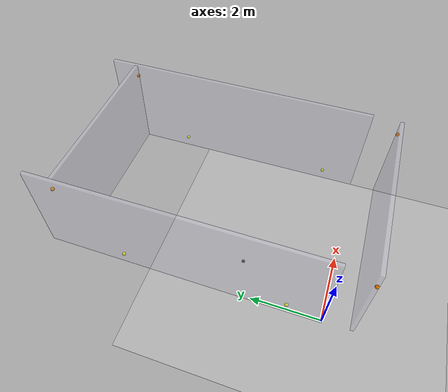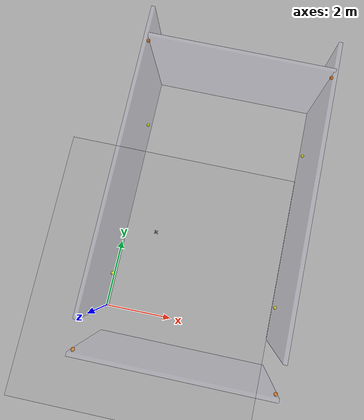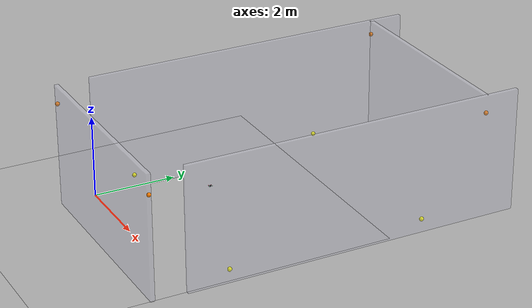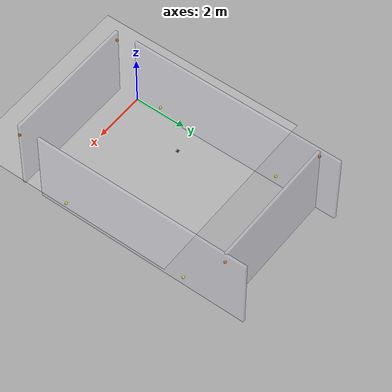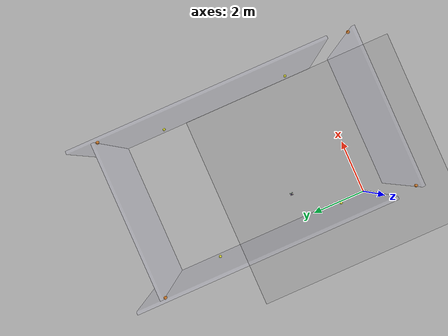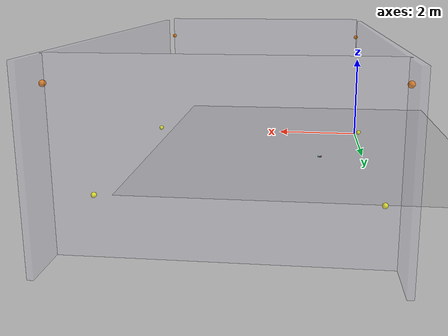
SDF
<?xml version="1.0" ?>
<sdf version="1.9">
  <world name="cf_lab">

    <!-- Physics -->
    <physics name="1ms" type="ignored">
      <max_step_size>0.001</max_step_size>
      <real_time_factor>1.0</real_time_factor>
    </physics>

    <!-- Required plugins -->
    <plugin filename="ignition-gazebo-physics-system"
            name="ignition::gazebo::systems::Physics"/>
    <plugin filename="ignition-gazebo-user-commands-system"
            name="ignition::gazebo::systems::UserCommands"/>
    <plugin filename="ignition-gazebo-scene-broadcaster-system"
            name="ignition::gazebo::systems::SceneBroadcaster"/>
    <plugin filename="ignition-gazebo-sensors-system"
            name="ignition::gazebo::systems::Sensors">
      <render_engine>ogre2</render_engine>
    </plugin>

    <!-- Sun light -->
    <light name="sun" type="directional">
      <cast_shadows>true</cast_shadows>
      <pose>0 0 10 0 0 0</pose>
      <diffuse>1 1 1 1</diffuse>
      <specular>0.5 0.5 0.5 1</specular>
      <direction>-0.5 0.1 -0.9</direction>
    </light>

    <!-- Floor — matches lab dimensions (5.04m x 8.2m) -->
    <model name="floor">
      <static>true</static>
      <link name="floor_link">
        <collision name="floor_collision">
          <geometry>
            <plane><normal>0 0 1</normal><size>10 10</size></plane>
          </geometry>
        </collision>
        <visual name="floor_visual">
          <geometry>
            <plane><normal>0 0 1</normal><size>10 10</size></plane>
          </geometry>
          <material>
            <ambient>0.5 0.5 0.5 1</ambient>
            <diffuse>0.7 0.7 0.7 1</diffuse>
          </material>
        </visual>
      </link>
    </model>

    <!-- Lab boundary walls (5.04m x 8.2m x 3m) -->
    <!-- Wall 1 — X=0 side -->
    <model name="wall_x0">
      <static>true</static>
      <pose>0 4.1 1.5 0 0 0</pose>
      <link name="link">
        <collision name="col"><geometry><box><size>0.1 8.2 3.0</size></box></geometry></collision>
        <visual name="vis">
          <geometry><box><size>0.1 8.2 3.0</size></box></geometry>
          <material><ambient>0.8 0.8 0.9 0.3</ambient><diffuse>0.8 0.8 0.9 0.3</diffuse></material>
        </visual>
      </link>
    </model>

    <!-- Wall 2 — X=5.04 side -->
    <model name="wall_x5">
      <static>true</static>
      <pose>5.04 4.1 1.5 0 0 0</pose>
      <link name="link">
        <collision name="col"><geometry><box><size>0.1 8.2 3.0</size></box></geometry></collision>
        <visual name="vis">
          <geometry><box><size>0.1 8.2 3.0</size></box></geometry>
          <material><ambient>0.8 0.8 0.9 0.3</ambient><diffuse>0.8 0.8 0.9 0.3</diffuse></material>
        </visual>
      </link>
    </model>

    <!-- Wall 3 — Y=-0.8 side -->
    <model name="wall_yn08">
      <static>true</static>
      <pose>2.52 -0.8 1.5 0 0 0</pose>
      <link name="link">
        <collision name="col"><geometry><box><size>5.04 0.1 3.0</size></box></geometry></collision>
        <visual name="vis">
          <geometry><box><size>5.04 0.1 3.0</size></box></geometry>
          <material><ambient>0.8 0.8 0.9 0.3</ambient><diffuse>0.8 0.8 0.9 0.3</diffuse></material>
        </visual>
      </link>
    </model>

    <!-- Wall 4 — Y=7.4 side -->
    <model name="wall_y74">
      <static>true</static>
      <pose>2.52 7.4 1.5 0 0 0</pose>
      <link name="link">
        <collision name="col"><geometry><box><size>5.04 0.1 3.0</size></box></geometry></collision>
        <visual name="vis">
          <geometry><box><size>5.04 0.1 3.0</size></box></geometry>
          <material><ambient>0.8 0.8 0.9 0.3</ambient><diffuse>0.8 0.8 0.9 0.3</diffuse></material>
        </visual>
      </link>
    </model>

    <!-- LPS Anchors (visual markers only) -->
    <!-- Anchor 0: (0, 0, 0.30) low -->
    <model name="anchor_0"><static>true</static><pose>0.0 1.0 0.3 0 0 0</pose>
      <link name="link"><visual name="vis"><geometry><sphere><radius>0.05</radius></sphere></geometry>
      <material><ambient>1 1 0 1</ambient><diffuse>1 1 0 1</diffuse></material></visual></link></model>

    <!-- Anchor 1: (0, 7.4, 2.34) high -->
    <model name="anchor_1"><static>true</static><pose>0.0 7.4 2.64 0 0 0</pose>
      <link name="link"><visual name="vis"><geometry><sphere><radius>0.05</radius></sphere></geometry>
      <material><ambient>1 0.5 0 1</ambient><diffuse>1 0.5 0 1</diffuse></material></visual></link></model>

    <!-- Anchor 2: (5.04, 6.8, 0.30) low -->
    <model name="anchor_2"><static>true</static><pose>5.04 5.8 0.3 0 0 0</pose>
      <link name="link"><visual name="vis"><geometry><sphere><radius>0.05</radius></sphere></geometry>
      <material><ambient>1 1 0 1</ambient><diffuse>1 1 0 1</diffuse></material></visual></link></model>

    <!-- Anchor 3: (5.04, -0.8, 2.22) high -->
    <model name="anchor_3"><static>true</static><pose>5.04 -0.8 2.52 0 0 0</pose>
      <link name="link"><visual name="vis"><geometry><sphere><radius>0.05</radius></sphere></geometry>
      <material><ambient>1 0.5 0 1</ambient><diffuse>1 0.5 0 1</diffuse></material></visual></link></model>

    <!-- Anchor 4: (0, -0.8, 2.22) high -->
    <model name="anchor_4"><static>true</static><pose>0.0 -0.8 2.52 0 0 0</pose>
      <link name="link"><visual name="vis"><geometry><sphere><radius>0.05</radius></sphere></geometry>
      <material><ambient>1 0.5 0 1</ambient><diffuse>1 0.5 0 1</diffuse></material></visual></link></model>

    <!-- Anchor 5: (0, 6.8, 0.30) low -->
    <model name="anchor_5"><static>true</static><pose>0.0 5.8 0.3 0 0 0</pose>
      <link name="link"><visual name="vis"><geometry><sphere><radius>0.05</radius></sphere></geometry>
      <material><ambient>1 1 0 1</ambient><diffuse>1 1 0 1</diffuse></material></visual></link></model>

    <!-- Anchor 6: (5.04, 7.4, 2.27) high -->
    <model name="anchor_6"><static>true</static><pose>5.04 7.4 2.57 0 0 0</pose>
      <link name="link"><visual name="vis"><geometry><sphere><radius>0.05</radius></sphere></geometry>
      <material><ambient>1 0.5 0 1</ambient><diffuse>1 0.5 0 1</diffuse></material></visual></link></model>

    <!-- Anchor 7: (5.04, 0, 0.30) low -->
    <model name="anchor_7"><static>true</static><pose>5.04 1.0 0.3 0 0 0</pose>
      <link name="link"><visual name="vis"><geometry><sphere><radius>0.05</radius></sphere></geometry>
      <material><ambient>1 1 0 1</ambient><diffuse>1 1 0 1</diffuse></material></visual></link></model>

    <!-- Crazyflie cf231 (inline kinematic model — replaces the broken external include) -->
    <!-- static=false + gravity=false = kinematic body; set_pose works, no fall -->
    <model name="cf231">
      <pose>1.0 2.5 0.1 0 0 0</pose>
      <static>false</static>
      <link name="base_link">
        <inertial>
          <mass>0.027</mass>
          <inertia>
            <ixx>1.657e-5</ixx><iyy>1.657e-5</iyy><izz>2.9e-5</izz>
            <ixy>0</ixy><ixz>0</ixz><iyz>0</iyz>
          </inertia>
        </inertial>

        <!-- Disable gravity on this link -->
        <gravity>false</gravity>

        <!-- Centre body - dark grey -->
        <visual name="body">
          <pose>0 0 0 0 0 0</pose>
          <geometry><box><size>0.032 0.032 0.016</size></box></geometry>
          <material>
            <ambient>0.15 0.15 0.15 1</ambient>
            <diffuse>0.25 0.25 0.25 1</diffuse>
          </material>
        </visual>

        <!-- Arm along X axis - blue -->
        <visual name="arm_x">
          <pose>0 0 0 0 0 0</pose>
          <geometry><box><size>0.095 0.007 0.003</size></box></geometry>
          <material>
            <ambient>0.05 0.05 0.7 1</ambient>
            <diffuse>0.1 0.1 0.9 1</diffuse>
          </material>
        </visual>

        <!-- Arm along Y axis - blue -->
        <visual name="arm_y">
          <pose>0 0 0 0 0 0</pose>
          <geometry><box><size>0.007 0.095 0.003</size></box></geometry>
          <material>
            <ambient>0.05 0.05 0.7 1</ambient>
            <diffuse>0.1 0.1 0.9 1</diffuse>
          </material>
        </visual>

        <!-- Motor FL (+x+y) - green = FRONT -->
        <visual name="motor_fl">
          <pose>0.0335 0.0335 0.005 0 0 0</pose>
          <geometry><cylinder><radius>0.010</radius><length>0.007</length></cylinder></geometry>
          <material><ambient>0.0 0.7 0.0 1</ambient><diffuse>0.0 0.9 0.0 1</diffuse></material>
        </visual>

        <!-- Propeller FL -->
        <visual name="prop_fl">
          <pose>0.0335 0.0335 0.010 0 0 0</pose>
          <geometry><cylinder><radius>0.023</radius><length>0.001</length></cylinder></geometry>
          <material><ambient>0.7 0.7 0.7 0.5</ambient><diffuse>0.8 0.8 0.8 0.5</diffuse></material>
        </visual>

        <!-- Motor FR (+x-y) - green = FRONT -->
        <visual name="motor_fr">
          <pose>0.0335 -0.0335 0.005 0 0 0</pose>
          <geometry><cylinder><radius>0.010</radius><length>0.007</length></cylinder></geometry>
          <material><ambient>0.0 0.7 0.0 1</ambient><diffuse>0.0 0.9 0.0 1</diffuse></material>
        </visual>

        <!-- Propeller FR -->
        <visual name="prop_fr">
          <pose>0.0335 -0.0335 0.010 0 0 0</pose>
          <geometry><cylinder><radius>0.023</radius><length>0.001</length></cylinder></geometry>
          <material><ambient>0.7 0.7 0.7 0.5</ambient><diffuse>0.8 0.8 0.8 0.5</diffuse></material>
        </visual>

        <!-- Motor RL (-x+y) - red = REAR -->
        <visual name="motor_rl">
          <pose>-0.0335 0.0335 0.005 0 0 0</pose>
          <geometry><cylinder><radius>0.010</radius><length>0.007</length></cylinder></geometry>
          <material><ambient>0.8 0.0 0.0 1</ambient><diffuse>0.9 0.0 0.0 1</diffuse></material>
        </visual>

        <!-- Propeller RL -->
        <visual name="prop_rl">
          <pose>-0.0335 0.0335 0.010 0 0 0</pose>
          <geometry><cylinder><radius>0.023</radius><length>0.001</length></cylinder></geometry>
          <material><ambient>0.7 0.7 0.7 0.5</ambient><diffuse>0.8 0.8 0.8 0.5</diffuse></material>
        </visual>

        <!-- Motor RR (-x-y) - red = REAR -->
        <visual name="motor_rr">
          <pose>-0.0335 -0.0335 0.005 0 0 0</pose>
          <geometry><cylinder><radius>0.010</radius><length>0.007</length></cylinder></geometry>
          <material><ambient>0.8 0.0 0.0 1</ambient><diffuse>0.9 0.0 0.0 1</diffuse></material>
        </visual>

        <!-- Propeller RR -->
        <visual name="prop_rr">
          <pose>-0.0335 -0.0335 0.010 0 0 0</pose>
          <geometry><cylinder><radius>0.023</radius><length>0.001</length></cylinder></geometry>
          <material><ambient>0.7 0.7 0.7 0.5</ambient><diffuse>0.8 0.8 0.8 0.5</diffuse></material>
        </visual>

        <!-- Collision box -->
        <collision name="collision">
          <geometry><box><size>0.092 0.092 0.029</size></box></geometry>
        </collision>

      </link>

      <!-- Pose publisher plugin -->
      <plugin filename="ignition-gazebo-pose-publisher-system"
              name="ignition::gazebo::systems::PosePublisher">
        <publish_link_pose>true</publish_link_pose>
        <publish_nested_model_pose>true</publish_nested_model_pose>
        <update_rate>50</update_rate>
      </plugin>

    </model>

  </world>
</sdf>
